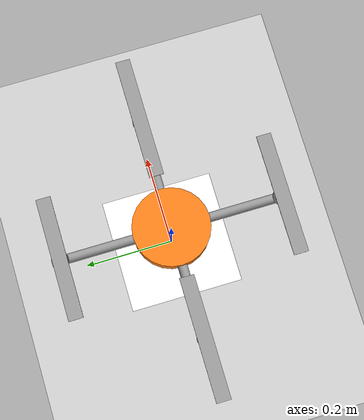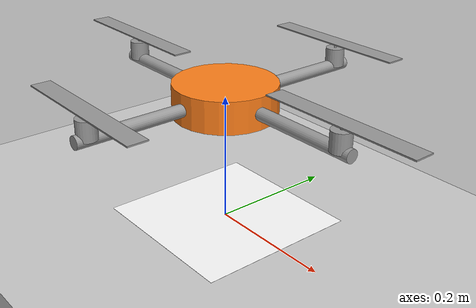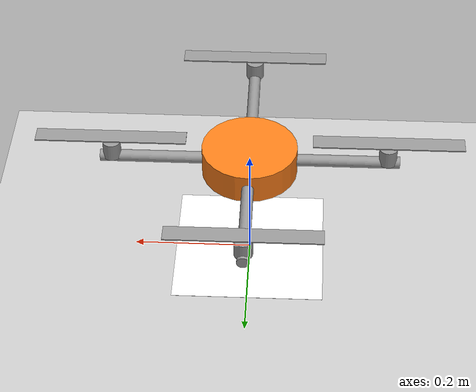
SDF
<?xml version="1.0"?>
<sdf version="1.5">
<world name="mrsim">
    <plugin filename="gz-sim-physics-system" name="gz::sim::systems::Physics"> </plugin>
    <plugin filename="gz-sim-scene-broadcaster-system" name="gz::sim::systems::SceneBroadcaster"> </plugin>
    <plugin filename="gz-sim-sensors-system" name="gz::sim::systems::Sensors">
        <render_engine>ogre2</render_engine>
    </plugin>
    <plugin filename="libgz-sim-imu-system" name="gz::sim::systems::Imu" />

    <physics type='ode'>
        <max_step_size>0.002000</max_step_size>
        <real_time_factor>1.000000</real_time_factor>
        <real_time_update_rate>500.000000</real_time_update_rate>
        <gravity>0 0 -9.81</gravity>
        <magnetic_field>23.816e-6 -0.41e-6 -39.829e-6</magnetic_field>
    </physics>

    <light type="directional" name="sun">
        <cast_shadows>false</cast_shadows>
        <pose>0 0 9.5 0 0 0</pose>
        <diffuse>0.8 0.8 0.8 1</diffuse>
        <specular>0.2 0.2 0.2 1</specular>
        <attenuation>
        <range>1000</range>
        <constant>0.9</constant>
        <linear>0.01</linear>
        <quadratic>0.001</quadratic>
        </attenuation>
        <direction>-0.5 0.1 -0.9</direction>
    </light>

    <model name="ground_plane">
        <static>true</static>
        <link name="link">
            <pose>0 0 -0.05 0 0 0</pose>
            <collision name="collision">
                <geometry>
                    <box>
                        <size>20 20 0.1</size>
                    </box>
                </geometry>
            </collision>
            <visual name="visual">
                <geometry>
                    <box>
                        <size>20 20 0.1</size>
                    </box>
                </geometry>
                <material>
                    <ambient>0.8 0.8 0.8 1</ambient>
                    <diffuse>0.8 0.8 0.8 1</diffuse>
                    <specular>0.8 0.8 0.8 1</specular>
                </material>
            </visual>
        </link>
    </model>

    <include>
        <pose>0 0 0 0 0 0</pose>
        <uri>model://aruco_6X6_250_1</uri>
        <name>tag</name>
    </include>

    <model name="qr">
        <pose>0 0 0.2 0 0 0</pose>
        <include>
            <uri>model://mrsim-quadrotor</uri>
            <name>qr</name>
        </include>
    </model>

    <plugin name="optitrack" filename="optitrack-gazebo-2.0.so">
        <hz>1000</hz>
        <port>1509</port>
        <publish>
            <link>qr::qr::base</link>
            <name>qr</name>
        </publish>
        <publish>
            <link>tag::tag</link>
            <name>tag</name>
        </publish>
    </plugin>
</world>
</sdf>

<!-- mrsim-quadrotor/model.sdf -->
<sdf version="1.5">
<model name="mrsim-quadrotor">
    <link name="base">
        <inertial>
            <mass>1.39</mass>
            <inertia>
                <ixx>0.015</ixx><ixy>0</ixy><ixz>0</ixz>
                <iyy>0.015</iyy><iyz>0</iyz>
                <izz>0.007</izz>
            </inertia>
        </inertial>

        <collision name="body">
            <geometry>
                <cylinder><radius>0.08</radius><length>0.05</length></cylinder>
            </geometry>
        </collision>

        <!-- three spheres to make contact stable -->
        <collision name="land_1">
            <pose>0.1 0 0 0 0 0</pose>
            <geometry>
                <sphere><radius>0.03</radius></sphere>
            </geometry>
        </collision>
        <collision name="land_2">
            <pose>-0.05 0.086 0 0 0 0</pose>
            <geometry>
                <sphere><radius>0.03</radius></sphere>
            </geometry>
        </collision>
        <collision name="land_3">
            <pose>-0.05 -0.086 0 0 0 0</pose>
            <geometry>
                <sphere><radius>0.03</radius></sphere>
            </geometry>
        </collision>

        <!-- contact for the arms -->
        <collision name="arm_1">
            <pose>0.125 0 0 0 1.5708 0</pose>
            <geometry>
                <cylinder><radius>0.01</radius><length>0.25</length></cylinder>
            </geometry>
        </collision>
        <collision name="arm_2">
            <pose>0 0.125 0 0 1.5708 1.5708</pose>
            <geometry>
                <cylinder><radius>0.01</radius><length>0.25</length></cylinder>
            </geometry>
        </collision>
        <collision name="arm_3">
            <pose>-0.125 0 0 0 1.5708 0</pose>
            <geometry>
                <cylinder><radius>0.01</radius><length>0.25</length></cylinder>
            </geometry>
        </collision>
        <collision name="arm_4">
            <pose>0 -0.125 0 0 1.5708 1.5708</pose>
            <geometry>
                <cylinder><radius>0.01</radius><length>0.25</length></cylinder>
            </geometry>
        </collision>

        <visual name="body">
            <geometry>
                <cylinder><radius>0.08</radius><length>0.05</length></cylinder>
            </geometry>
            <material>
                <diffuse>1.0 0.5 0.1 1</diffuse>
            </material>
        </visual>
        <visual name="arm-1">
            <pose>0.125 0 0 0 1.5708 0</pose>
            <geometry>
                <cylinder><radius>0.01</radius><length>0.25</length></cylinder>
            </geometry>
            <material>
                <diffuse>0.6 0.6 0.6 1</diffuse>
            </material>
        </visual>
        <visual name="arm-2">
            <pose>0 0.125 0 0 1.5708 1.5708</pose>
            <geometry>
                <cylinder><radius>0.01</radius><length>0.25</length></cylinder>
            </geometry>
            <material>
                <diffuse>0.6 0.6 0.6 1</diffuse>
            </material>
        </visual>
        <visual name="arm-3">
            <pose>-0.125 0 0 0 1.5708 0</pose>
            <geometry>
                <cylinder><radius>0.01</radius><length>0.25</length></cylinder>
            </geometry>
            <material>
                <diffuse>0.6 0.6 0.6 1</diffuse>
            </material>
        </visual>
        <visual name="arm-4">
            <pose>0 -0.125 0 0 1.5708 1.5708</pose>
            <geometry>
                <cylinder><radius>0.01</radius><length>0.25</length></cylinder>
            </geometry>
            <material>
                <diffuse>0.6 0.6 0.6 1</diffuse>
            </material>
        </visual>
    </link>

    <include>
        <uri>model://mrsim-rotor</uri>
        <name>rotor_1</name>
        <pose>0.23 0 0 0 0 0</pose>
    </include>
    <joint name="joint_rotor_1" type="revolute">
        <parent>base</parent>
        <child>rotor_1::propeller</child>
        <axis><xyz>0 0 1</xyz></axis>
    </joint>

    <include>
        <uri>model://mrsim-rotor</uri>
        <name>rotor_2</name>
        <pose>0 0.23 0 0 0 0</pose>
    </include>
    <joint name="joint_rotor_2" type="revolute">
        <parent>base</parent>
        <child>rotor_2::propeller</child>
        <axis><xyz>0 0 1</xyz></axis>
    </joint>

    <include>
        <uri>model://mrsim-rotor</uri>
        <name>rotor_3</name>
        <pose>-0.23 0 0 0 0 0</pose>
    </include>
    <joint name="joint_rotor_3" type="revolute">
        <parent>base</parent>
        <child>rotor_3::propeller</child>
        <axis><xyz>0 0 1</xyz></axis>
    </joint>

    <include>
        <uri>model://mrsim-rotor</uri>
        <name>rotor_4</name>
        <pose>0 -0.23 0 0 0 0</pose>
    </include>
    <joint name="joint_rotor_4" type="revolute">
        <parent>base</parent>
        <child>rotor_4::propeller</child>
        <axis><xyz>0 0 1</xyz></axis>
    </joint>

    <plugin name="mrsim" filename="mrsim-gazebo-2.0.so">
        <link>base</link>
        <rotors>
            <noise>0.03</noise>
            <cf>5.9e-4</cf>
            <ct>1e-5</ct>
            <rotor><joint spin="cw">joint_rotor_1</joint></rotor>
            <rotor><joint spin="ccw">joint_rotor_2</joint></rotor>
            <rotor><joint spin="cw">joint_rotor_3</joint></rotor>
            <rotor><joint spin="ccw">joint_rotor_4</joint></rotor>
        </rotors>
    </plugin>
</model>
</sdf>

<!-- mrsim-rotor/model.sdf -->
<sdf version="1.5">
  <model name="mrsim-rotor">
    <link name="propeller">
      <inertial>
        <mass>0.07</mass>
        <inertia>
          <ixx>4e-5</ixx><ixy>0</ixy><ixz>0</ixz>
          <iyy>4e-5</iyy><iyz>0</iyz>
          <izz>8e-5</izz>
        </inertia>
      </inertial>

      <collision name="collision">
        <pose>0 0 0.04 0 0 0</pose>
        <geometry>
          <cylinder><radius>0.127</radius><length>0.002</length></cylinder>
        </geometry>
      </collision>

      <visual name="motor">
        <pose>0 0 0.015 0 0 0</pose>
        <geometry>
          <cylinder><radius>0.015</radius><length>0.03</length></cylinder>
        </geometry>
        <material>
          <diffuse>0.6 0.6 0.6 1</diffuse>
        </material>
      </visual>

      <visual name="axle">
        <pose>0 0 0.035 0 0 0</pose>
        <geometry>
          <cylinder><radius>0.002</radius><length>0.01</length></cylinder>
        </geometry>
        <material>
          <diffuse>0.6 0.6 0.6 1</diffuse>
        </material>
      </visual>

      <visual name="blade">
        <pose>0 0 0.04 0 0 0</pose>
        <geometry>
          <box><size>0.25 0.03 0.002</size></box>
        </geometry>
        <material>
          <diffuse>0.6 0.6 0.6 1</diffuse>
        </material>
      </visual>
    </link>
  </model>
</sdf>

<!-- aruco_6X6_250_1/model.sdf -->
<sdf version='1.6'>
    <model name='aruco_6X6_250_1'>
        <link name='tag'>
            <gravity>0</gravity>
            <inertial>
                <mass>0.001</mass>
                <inertia>
                    <ixx>1e-5</ixx><ixy>0</ixy><ixz>0</ixz>
                    <iyy>1e-5</iyy><iyz>0</iyz>
                    <izz>1e-5</izz>
                </inertia>
            </inertial>
            <visual name='front'>
                <pose>0 0 0 0 0 1.57075</pose>
                <geometry>
                    <box>
                        <size>0.2571428571428571 0.2571428571428571 0.0005</size>
                    </box>
                </geometry>
                <material>
                    <ambient>1 1 1 1</ambient>
                    <diffuse>1 1 1 1</diffuse>
                    <specular>0 0 0 1</specular>
                    <pbr>
                        <metal>
                            <albedo_map>model://aruco_6X6_250_1/materials/textures/aruco_6X6_250_1.png</albedo_map>
                            <metalness>0.0</metalness>
                            <roughness>1.0</roughness>
                        </metal>
                    </pbr>
                </material>
            </visual>
            <visual name="back">
                <pose>0 0 -0.001 0 0 1.57075</pose>
                <geometry>
                    <box>
                        <size>0.2571428571428571 0.2571428571428571 0.001</size>
                    </box>
                </geometry>
                <material>
                    <ambient>0 0 0 1</ambient>
                    <diffuse>0 0 0 1</diffuse>
                </material>
            </visual>
        </link>
    </model>
</sdf>
